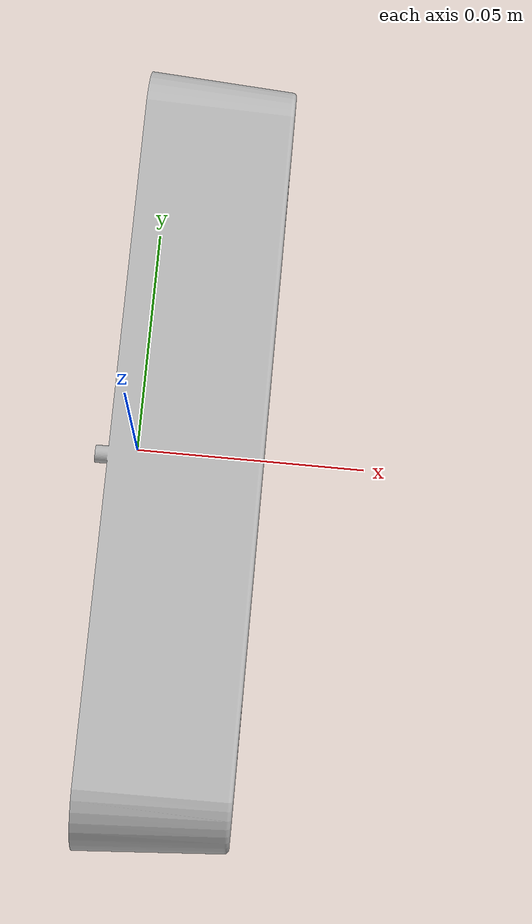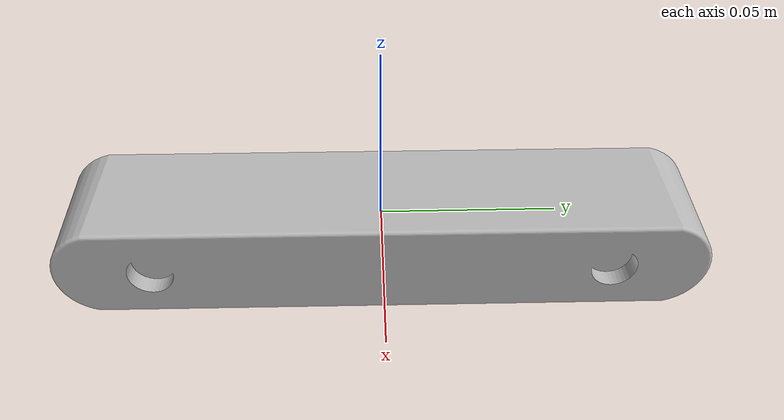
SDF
<?xml version="1.0" ?>
<sdf version="1.5">
  <model name="Zed_sim">
    <pose>0 0 0 0 0 0 </pose>
    <link name="link">
      <inertial>
        <mass>0.159</mass>
      </inertial>
      <collision name="collision">
        <geometry>
	  <box>
	    <size> 0.03 0.175 0.033 </size>
	  </box>
	</geometry>
      </collision>
      <visual name="visual">
        <pose>-0.01 -0.0875 -0.0125 1.5707963  0 1.5707963 </pose>
        <geometry>
          <mesh>
            <uri>model://Zed_sim/meshes/zed_body.stl</uri>
            <scale> 0.001 0.001 0.001</scale>
	  </mesh>
        </geometry>
      </visual>
<!--  depth sensor  -->
      <sensor name="camera" type="depth">
        <pose> 0.005 0 0.004 0 0 0 </pose>
	<update_rate>20</update_rate>
        <camera>
          <horizontal_fov>1.047198</horizontal_fov>
          <image>
            <width>640</width>
            <height>480</height>
            <format>R8G8B8</format>
          </image>
          <clip>
            <near>0.01</near>
            <far>10</far>
          </clip>
        </camera>

        <plugin name="camera_plugin" filename="libgazebo_ros_openni_kinect.so">
        <!--plugin name="camera_depth_plugin" filename="libgazebo_ros_depth_camera.so"-->
          <baseline>0.2</baseline>
          <alwaysOn>true</alwaysOn>
          <updateRate>0.0</updateRate>
          <cameraName>depth_camera</cameraName>
          <imageTopicName>/depth_camera/image_raw</imageTopicName>
          <cameraInfoTopicName>/depth_camera/camera_info</cameraInfoTopicName>
          <depthImageTopicName>/depth_camera/depth_image_raw</depthImageTopicName>
          <depthImageInfoTopicName>/depth_camera/camera_info</depthImageInfoTopicName>
	  <depthImageCameraInfoTopicName>/zzzzz/camera_ifdo</depthImageCameraInfoTopicName>
          <pointCloudTopicName>/camera/depth/points</pointCloudTopicName>
          <frameName>camera_link</frameName>
          <pointCloudCutoff>0.05</pointCloudCutoff>
          <distortionK1>0</distortionK1>
          <distortionK2>0</distortionK2>
          <distortionK3>0</distortionK3>
          <distortionT1>0</distortionT1>
          <distortionT2>0</distortionT2>
          <CxPrime>0</CxPrime>
          <Cx>0</Cx>
          <Cy>0</Cy>
          <focalLength>0</focalLength>
          <hackBaseline>0</hackBaseline>
        </plugin>

      </sensor>

<!-- modify -->
      <sensor name="camera_right(sensor)" type="camera">
	<visualize>true</visualize>
        <pose> 0.005 -0.0595 0.004 0 0 0 </pose>
	<update_rate>20</update_rate>
        <camera>
          <horizontal_fov>1.047198</horizontal_fov>
          <image>
            <width>640</width>
            <height>480</height>
            <format>R8G8B8</format>
          </image>
          <clip>
            <near>0.01</near>
            <far>8</far>
          </clip>
          <noise>
            <type>gaussian</type>
            <!-- Noise is sampled independently per pixel on each frame.
                 That pixel's noise value is added to each of its color
                 channels, which at that point lie in the range [0,1]. -->
            <mean>0.0</mean>
            <stddev>0.007</stddev>
          </noise>

        </camera>

        <plugin name="camera_right_plugin" filename="libgazebo_ros_camera.so">
          <alwaysOn>true</alwaysOn>
          <updateRate>0.0</updateRate>
          <cameraName>camera_right</cameraName>
          <imageTopicName>image_raw</imageTopicName>
          <cameraInfoTopicName>camera_info</cameraInfoTopicName>
          <frameName>camera_link</frameName>
          <hackBaseline>0.07</hackBaseline>
          <distortionK1>0.0</distortionK1>
          <distortionK2>0.0</distortionK2>
          <distortionK3>0.0</distortionK3>
          <distortionT1>0.0</distortionT1>
          <distortionT2>0.0</distortionT2>
        </plugin>

      </sensor>

      <sensor name="camera_left(sensor)" type="camera">
        <visualize>true</visualize>
	<pose> 0.005 0.058 0.004 0 0 0 </pose>
        <update_rate>20</update_rate>
        <camera>
          <horizontal_fov>1.047198</horizontal_fov>
          <image>
            <width>640</width>
            <height>480</height>
            <format>R8G8B8</format>
          </image>
          <clip>
            <near>0.01</near>
            <far>10</far>
          </clip>
          <noise>
            <type>gaussian</type>
            <!-- Noise is sampled independently per pixel on each frame.
                 That pixel's noise value is added to each of its color
                 channels, which at that point lie in the range [0,1]. -->
            <mean>0.0</mean>
            <stddev>0.007</stddev>
          </noise>

        </camera>

        <plugin name="camera_left_plugin" filename="libgazebo_ros_camera.so">
          <alwaysOn>true</alwaysOn>
          <updateRate>0.0</updateRate>
          <cameraName>camera_left</cameraName>
          <imageTopicName>image_raw</imageTopicName>
          <cameraInfoTopicName>camera_info</cameraInfoTopicName>
          <frameName>camera_link</frameName>
          <hackBaseline>0.07</hackBaseline>
          <distortionK1>0.0</distortionK1>
          <distortionK2>0.0</distortionK2>
          <distortionK3>0.0</distortionK3>
          <distortionT1>0.0</distortionT1>
          <distortionT2>0.0</distortionT2>
        </plugin>

      </sensor>

<!-- modify -->

    </link>
  </model>
</sdf>
